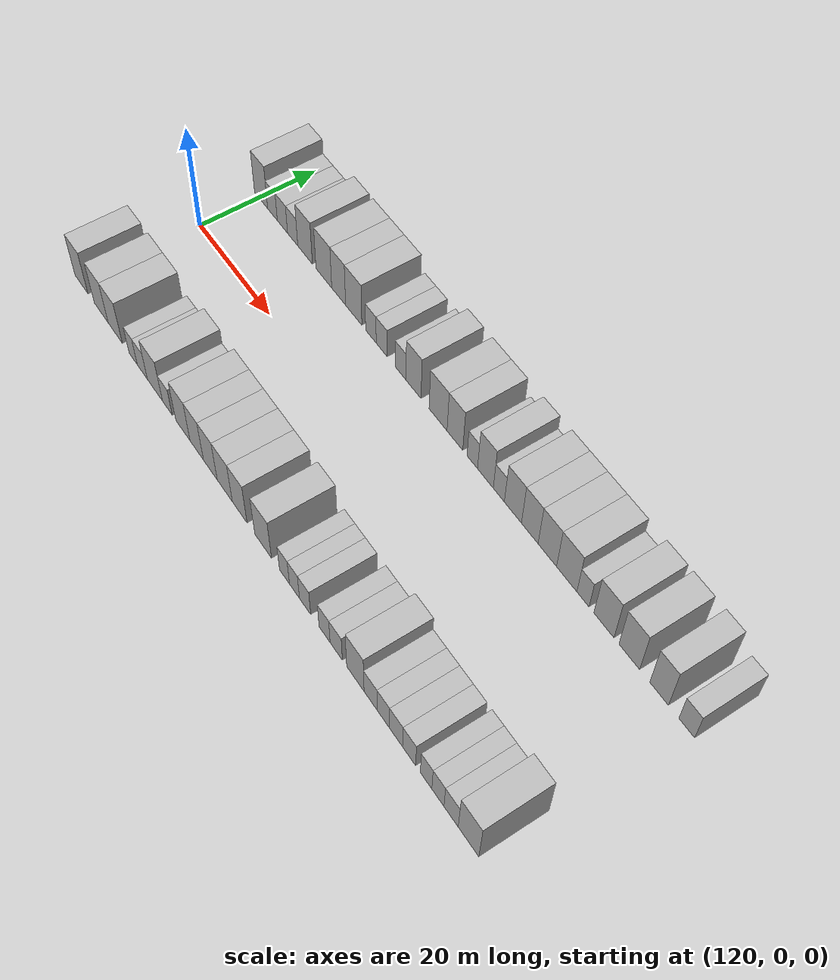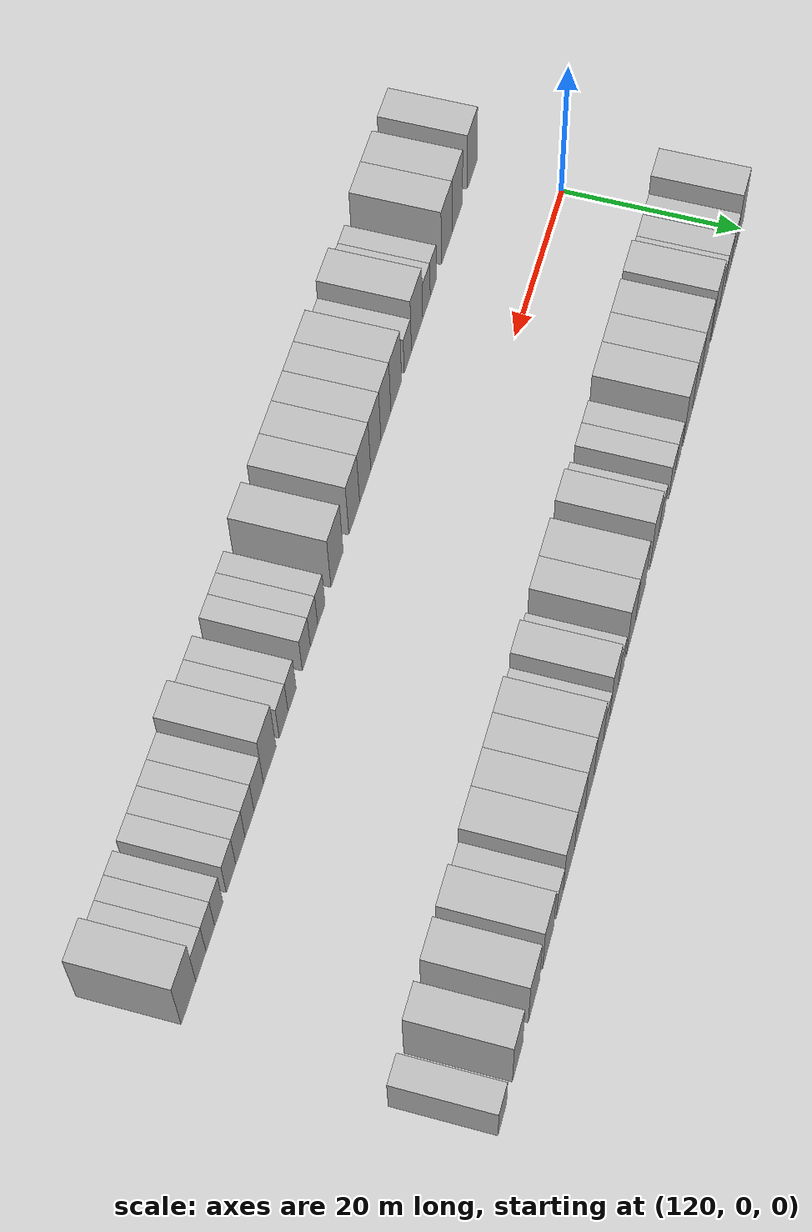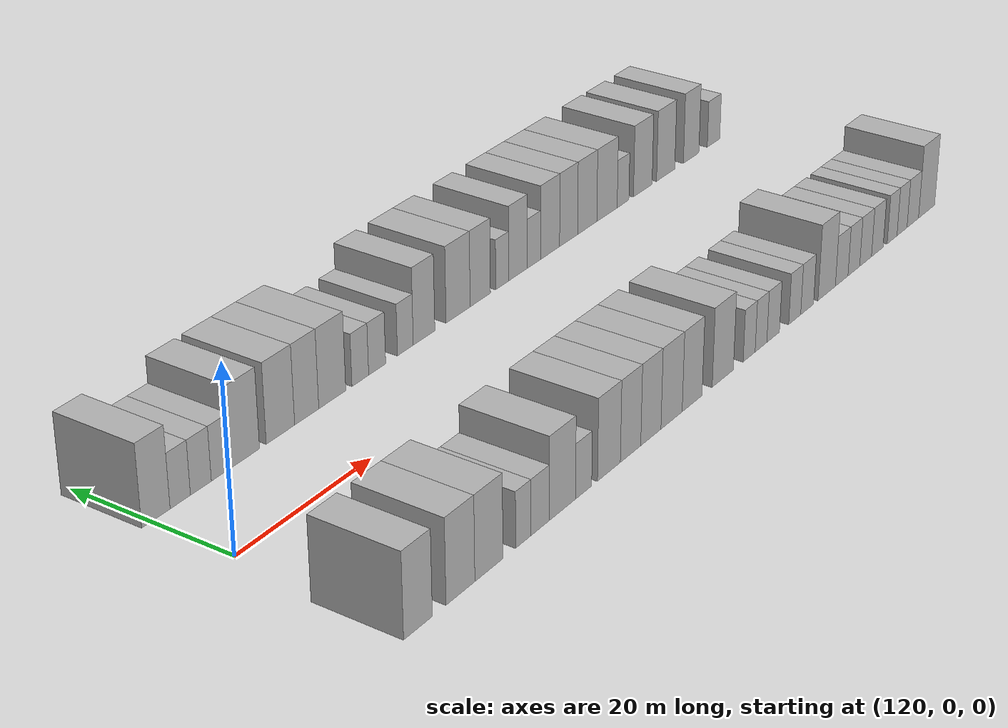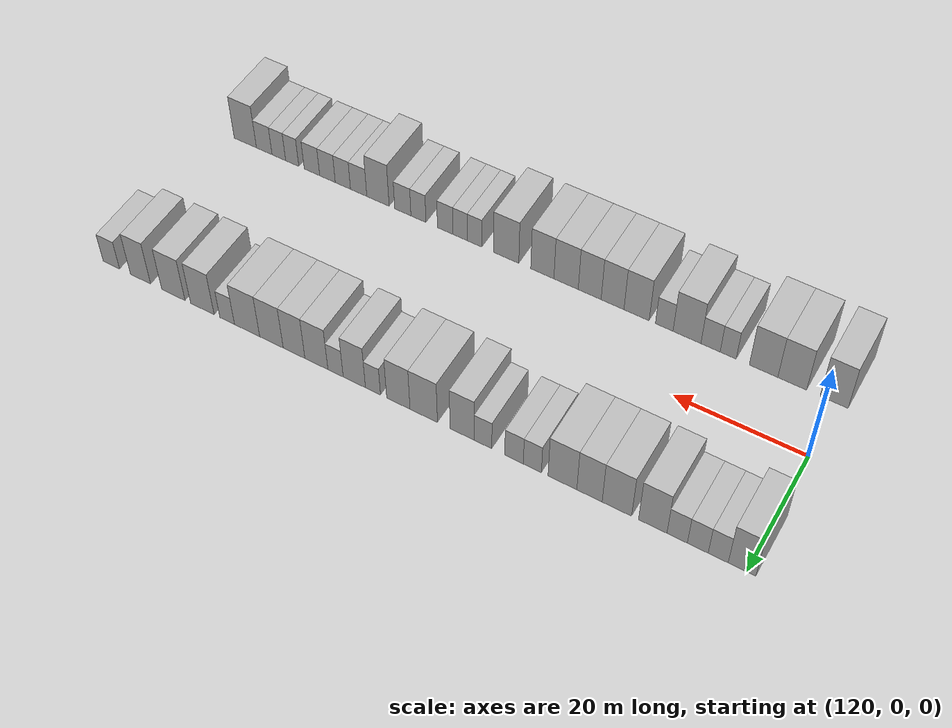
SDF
<sdf version="1.6">
 <world name="default">
  <model name="building_30">
   <static>1</static>
   <pose>120.6989 15.0000 0 0.000000 0.000000 1.570796</pose>
   <link name="link">
    <pose>0 0 4.50 0 0 0</pose>
    <collision name="collision"><geometry><box><size>10.0000 3.8567 9.0000</size></box></geometry></collision>
    <visual name="visual">
     <cast_shadows>0</cast_shadows>
     <geometry><box><size>10.0000 3.8567 9.0000</size></box></geometry>
     <material>
      <script>
       <uri>model://HANNAS_wall/materials/scripts</uri>
       <uri>model://HANNAS_wall/materials/textures</uri>
       <name>vrc/HANNAS_wall</name>
      </script>
     </material>
    </visual>
   </link>
  </model>
  <model name="building_31">
   <static>1</static>
   <pose>124.0344 15.0000 0 0.000000 0.000000 1.570796</pose>
   <link name="link">
    <pose>0 0 3.00 0 0 0</pose>
    <collision name="collision"><geometry><box><size>10.0000 2.8143 6.0000</size></box></geometry></collision>
    <visual name="visual">
     <cast_shadows>0</cast_shadows>
     <geometry><box><size>10.0000 2.8143 6.0000</size></box></geometry>
     <material>
      <script>
       <uri>model://HANNAS_wall/materials/scripts</uri>
       <uri>model://HANNAS_wall/materials/textures</uri>
       <name>vrc/HANNAS_wall</name>
      </script>
     </material>
    </visual>
   </link>
  </model>
  <model name="building_32">
   <static>1</static>
   <pose>126.9195 15.0000 0 0.000000 0.000000 1.570796</pose>
   <link name="link">
    <pose>0 0 3.00 0 0 0</pose>
    <collision name="collision"><geometry><box><size>10.0000 2.9560 6.0000</size></box></geometry></collision>
    <visual name="visual">
     <cast_shadows>0</cast_shadows>
     <geometry><box><size>10.0000 2.9560 6.0000</size></box></geometry>
     <material>
      <script>
       <uri>model://HANNAS_wall/materials/scripts</uri>
       <uri>model://HANNAS_wall/materials/textures</uri>
       <name>vrc/HANNAS_wall</name>
      </script>
     </material>
    </visual>
   </link>
  </model>
  <model name="building_33">
   <static>1</static>
   <pose>129.8543 15.0000 0 0.000000 0.000000 1.570796</pose>
   <link name="link">
    <pose>0 0 3.00 0 0 0</pose>
    <collision name="collision"><geometry><box><size>10.0000 2.9135 6.0000</size></box></geometry></collision>
    <visual name="visual">
     <cast_shadows>0</cast_shadows>
     <geometry><box><size>10.0000 2.9135 6.0000</size></box></geometry>
     <material>
      <script>
       <uri>model://HANNAS_wall/materials/scripts</uri>
       <uri>model://HANNAS_wall/materials/textures</uri>
       <name>vrc/HANNAS_wall</name>
      </script>
     </material>
    </visual>
   </link>
  </model>
  <model name="building_34">
   <static>1</static>
   <pose>133.3670 15.0000 0 0.000000 0.000000 1.570796</pose>
   <link name="link">
    <pose>0 0 4.50 0 0 0</pose>
    <collision name="collision"><geometry><box><size>10.0000 4.1120 9.0000</size></box></geometry></collision>
    <visual name="visual">
     <cast_shadows>0</cast_shadows>
     <geometry><box><size>10.0000 4.1120 9.0000</size></box></geometry>
     <material>
      <script>
       <uri>model://HANNAS_wall/materials/scripts</uri>
       <uri>model://HANNAS_wall/materials/textures</uri>
       <name>vrc/HANNAS_wall</name>
      </script>
     </material>
    </visual>
   </link>
  </model>
  <model name="building_35">
   <static>1</static>
   <pose>138.5876 15.0000 0 0.000000 0.000000 1.570796</pose>
   <link name="link">
    <pose>0 0 4.50 0 0 0</pose>
    <collision name="collision"><geometry><box><size>10.0000 4.3291 9.0000</size></box></geometry></collision>
    <visual name="visual">
     <cast_shadows>0</cast_shadows>
     <geometry><box><size>10.0000 4.3291 9.0000</size></box></geometry>
     <material>
      <script>
       <uri>model://HANNAS_wall/materials/scripts</uri>
       <uri>model://HANNAS_wall/materials/textures</uri>
       <name>vrc/HANNAS_wall</name>
      </script>
     </material>
    </visual>
   </link>
  </model>
  <model name="building_36">
   <static>1</static>
   <pose>142.6319 15.0000 0 0.000000 0.000000 1.570796</pose>
   <link name="link">
    <pose>0 0 4.50 0 0 0</pose>
    <collision name="collision"><geometry><box><size>10.0000 3.7596 9.0000</size></box></geometry></collision>
    <visual name="visual">
     <cast_shadows>0</cast_shadows>
     <geometry><box><size>10.0000 3.7596 9.0000</size></box></geometry>
     <material>
      <script>
       <uri>model://HANNAS_wall/materials/scripts</uri>
       <uri>model://HANNAS_wall/materials/textures</uri>
       <name>vrc/HANNAS_wall</name>
      </script>
     </material>
    </visual>
   </link>
  </model>
  <model name="building_37">
   <static>1</static>
   <pose>146.6720 15.0000 0 0.000000 0.000000 1.570796</pose>
   <link name="link">
    <pose>0 0 4.50 0 0 0</pose>
    <collision name="collision"><geometry><box><size>10.0000 4.3206 9.0000</size></box></geometry></collision>
    <visual name="visual">
     <cast_shadows>0</cast_shadows>
     <geometry><box><size>10.0000 4.3206 9.0000</size></box></geometry>
     <material>
      <script>
       <uri>model://HANNAS_wall/materials/scripts</uri>
       <uri>model://HANNAS_wall/materials/textures</uri>
       <name>vrc/HANNAS_wall</name>
      </script>
     </material>
    </visual>
   </link>
  </model>
  <model name="building_38">
   <static>1</static>
   <pose>151.2059 15.0000 0 0.000000 0.000000 1.570796</pose>
   <link name="link">
    <pose>0 0 3.00 0 0 0</pose>
    <collision name="collision"><geometry><box><size>10.0000 2.7472 6.0000</size></box></geometry></collision>
    <visual name="visual">
     <cast_shadows>0</cast_shadows>
     <geometry><box><size>10.0000 2.7472 6.0000</size></box></geometry>
     <material>
      <script>
       <uri>model://HANNAS_wall/materials/scripts</uri>
       <uri>model://HANNAS_wall/materials/textures</uri>
       <name>vrc/HANNAS_wall</name>
      </script>
     </material>
    </visual>
   </link>
  </model>
  <model name="building_39">
   <static>1</static>
   <pose>153.9997 15.0000 0 0.000000 0.000000 1.570796</pose>
   <link name="link">
    <pose>0 0 3.00 0 0 0</pose>
    <collision name="collision"><geometry><box><size>10.0000 2.8406 6.0000</size></box></geometry></collision>
    <visual name="visual">
     <cast_shadows>0</cast_shadows>
     <geometry><box><size>10.0000 2.8406 6.0000</size></box></geometry>
     <material>
      <script>
       <uri>model://HANNAS_wall/materials/scripts</uri>
       <uri>model://HANNAS_wall/materials/textures</uri>
       <name>vrc/HANNAS_wall</name>
      </script>
     </material>
    </visual>
   </link>
  </model>
  <model name="building_40">
   <static>1</static>
   <pose>158.7817 15.0000 0 0.000000 0.000000 1.570796</pose>
   <link name="link">
    <pose>0 0 3.00 0 0 0</pose>
    <collision name="collision"><geometry><box><size>10.0000 2.7233 6.0000</size></box></geometry></collision>
    <visual name="visual">
     <cast_shadows>0</cast_shadows>
     <geometry><box><size>10.0000 2.7233 6.0000</size></box></geometry>
     <material>
      <script>
       <uri>model://HANNAS_wall/materials/scripts</uri>
       <uri>model://HANNAS_wall/materials/textures</uri>
       <name>vrc/HANNAS_wall</name>
      </script>
     </material>
    </visual>
   </link>
  </model>
  <model name="building_41">
   <static>1</static>
   <pose>162.0331 15.0000 0 0.000000 0.000000 1.570796</pose>
   <link name="link">
    <pose>0 0 4.50 0 0 0</pose>
    <collision name="collision"><geometry><box><size>10.0000 3.7794 9.0000</size></box></geometry></collision>
    <visual name="visual">
     <cast_shadows>0</cast_shadows>
     <geometry><box><size>10.0000 3.7794 9.0000</size></box></geometry>
     <material>
      <script>
       <uri>model://HANNAS_wall/materials/scripts</uri>
       <uri>model://HANNAS_wall/materials/textures</uri>
       <name>vrc/HANNAS_wall</name>
      </script>
     </material>
    </visual>
   </link>
  </model>
  <model name="building_42">
   <static>1</static>
   <pose>168.1089 15.0000 0 0.000000 0.000000 1.570796</pose>
   <link name="link">
    <pose>0 0 4.50 0 0 0</pose>
    <collision name="collision"><geometry><box><size>10.0000 4.3722 9.0000</size></box></geometry></collision>
    <visual name="visual">
     <cast_shadows>0</cast_shadows>
     <geometry><box><size>10.0000 4.3722 9.0000</size></box></geometry>
     <material>
      <script>
       <uri>model://HANNAS_wall/materials/scripts</uri>
       <uri>model://HANNAS_wall/materials/textures</uri>
       <name>vrc/HANNAS_wall</name>
      </script>
     </material>
    </visual>
   </link>
  </model>
  <model name="building_43">
   <static>1</static>
   <pose>172.1720 15.0000 0 0.000000 0.000000 1.570796</pose>
   <link name="link">
    <pose>0 0 4.50 0 0 0</pose>
    <collision name="collision"><geometry><box><size>10.0000 3.7539 9.0000</size></box></geometry></collision>
    <visual name="visual">
     <cast_shadows>0</cast_shadows>
     <geometry><box><size>10.0000 3.7539 9.0000</size></box></geometry>
     <material>
      <script>
       <uri>model://HANNAS_wall/materials/scripts</uri>
       <uri>model://HANNAS_wall/materials/textures</uri>
       <name>vrc/HANNAS_wall</name>
      </script>
     </material>
    </visual>
   </link>
  </model>
  <model name="building_44">
   <static>1</static>
   <pose>176.2756 15.0000 0 0.000000 0.000000 1.570796</pose>
   <link name="link">
    <pose>0 0 3.00 0 0 0</pose>
    <collision name="collision"><geometry><box><size>10.0000 2.4533 6.0000</size></box></geometry></collision>
    <visual name="visual">
     <cast_shadows>0</cast_shadows>
     <geometry><box><size>10.0000 2.4533 6.0000</size></box></geometry>
     <material>
      <script>
       <uri>model://HANNAS_wall/materials/scripts</uri>
       <uri>model://HANNAS_wall/materials/textures</uri>
       <name>vrc/HANNAS_wall</name>
      </script>
     </material>
    </visual>
   </link>
  </model>
  <model name="building_45">
   <static>1</static>
   <pose>179.3268 15.0000 0 0.000000 0.000000 1.570796</pose>
   <link name="link">
    <pose>0 0 4.50 0 0 0</pose>
    <collision name="collision"><geometry><box><size>10.0000 3.6490 9.0000</size></box></geometry></collision>
    <visual name="visual">
     <cast_shadows>0</cast_shadows>
     <geometry><box><size>10.0000 3.6490 9.0000</size></box></geometry>
     <material>
      <script>
       <uri>model://HANNAS_wall/materials/scripts</uri>
       <uri>model://HANNAS_wall/materials/textures</uri>
       <name>vrc/HANNAS_wall</name>
      </script>
     </material>
    </visual>
   </link>
  </model>
  <model name="building_46">
   <static>1</static>
   <pose>182.4156 15.0000 0 0.000000 0.000000 1.570796</pose>
   <link name="link">
    <pose>0 0 3.00 0 0 0</pose>
    <collision name="collision"><geometry><box><size>10.0000 2.5285 6.0000</size></box></geometry></collision>
    <visual name="visual">
     <cast_shadows>0</cast_shadows>
     <geometry><box><size>10.0000 2.5285 6.0000</size></box></geometry>
     <material>
      <script>
       <uri>model://HANNAS_wall/materials/scripts</uri>
       <uri>model://HANNAS_wall/materials/textures</uri>
       <name>vrc/HANNAS_wall</name>
      </script>
     </material>
    </visual>
   </link>
  </model>
  <model name="building_47">
   <static>1</static>
   <pose>185.6002 15.0000 0 0.000000 0.000000 1.570796</pose>
   <link name="link">
    <pose>0 0 4.50 0 0 0</pose>
    <collision name="collision"><geometry><box><size>10.0000 3.8407 9.0000</size></box></geometry></collision>
    <visual name="visual">
     <cast_shadows>0</cast_shadows>
     <geometry><box><size>10.0000 3.8407 9.0000</size></box></geometry>
     <material>
      <script>
       <uri>model://HANNAS_wall/materials/scripts</uri>
       <uri>model://HANNAS_wall/materials/textures</uri>
       <name>vrc/HANNAS_wall</name>
      </script>
     </material>
    </visual>
   </link>
  </model>
  <model name="building_48">
   <static>1</static>
   <pose>189.3552 15.0000 0 0.000000 0.000000 1.570796</pose>
   <link name="link">
    <pose>0 0 4.50 0 0 0</pose>
    <collision name="collision"><geometry><box><size>10.0000 3.6694 9.0000</size></box></geometry></collision>
    <visual name="visual">
     <cast_shadows>0</cast_shadows>
     <geometry><box><size>10.0000 3.6694 9.0000</size></box></geometry>
     <material>
      <script>
       <uri>model://HANNAS_wall/materials/scripts</uri>
       <uri>model://HANNAS_wall/materials/textures</uri>
       <name>vrc/HANNAS_wall</name>
      </script>
     </material>
    </visual>
   </link>
  </model>
  <model name="building_49">
   <static>1</static>
   <pose>193.1939 15.0000 0 0.000000 0.000000 1.570796</pose>
   <link name="link">
    <pose>0 0 4.50 0 0 0</pose>
    <collision name="collision"><geometry><box><size>10.0000 4.0080 9.0000</size></box></geometry></collision>
    <visual name="visual">
     <cast_shadows>0</cast_shadows>
     <geometry><box><size>10.0000 4.0080 9.0000</size></box></geometry>
     <material>
      <script>
       <uri>model://HANNAS_wall/materials/scripts</uri>
       <uri>model://HANNAS_wall/materials/textures</uri>
       <name>vrc/HANNAS_wall</name>
      </script>
     </material>
    </visual>
   </link>
  </model>
  <model name="building_50">
   <static>1</static>
   <pose>197.3684 15.0000 0 0.000000 0.000000 1.570796</pose>
   <link name="link">
    <pose>0 0 4.50 0 0 0</pose>
    <collision name="collision"><geometry><box><size>10.0000 4.3410 9.0000</size></box></geometry></collision>
    <visual name="visual">
     <cast_shadows>0</cast_shadows>
     <geometry><box><size>10.0000 4.3410 9.0000</size></box></geometry>
     <material>
      <script>
       <uri>model://HANNAS_wall/materials/scripts</uri>
       <uri>model://HANNAS_wall/materials/textures</uri>
       <name>vrc/HANNAS_wall</name>
      </script>
     </material>
    </visual>
   </link>
  </model>
  <model name="building_51">
   <static>1</static>
   <pose>200.8115 15.0000 0 0.000000 0.000000 1.570796</pose>
   <link name="link">
    <pose>0 0 3.00 0 0 0</pose>
    <collision name="collision"><geometry><box><size>10.0000 2.5452 6.0000</size></box></geometry></collision>
    <visual name="visual">
     <cast_shadows>0</cast_shadows>
     <geometry><box><size>10.0000 2.5452 6.0000</size></box></geometry>
     <material>
      <script>
       <uri>model://HANNAS_wall/materials/scripts</uri>
       <uri>model://HANNAS_wall/materials/textures</uri>
       <name>vrc/HANNAS_wall</name>
      </script>
     </material>
    </visual>
   </link>
  </model>
  <model name="building_52">
   <static>1</static>
   <pose>205.1507 15.0000 0 0.000000 0.000000 1.570796</pose>
   <link name="link">
    <pose>0 0 4.50 0 0 0</pose>
    <collision name="collision"><geometry><box><size>10.0000 4.1331 9.0000</size></box></geometry></collision>
    <visual name="visual">
     <cast_shadows>0</cast_shadows>
     <geometry><box><size>10.0000 4.1331 9.0000</size></box></geometry>
     <material>
      <script>
       <uri>model://HANNAS_wall/materials/scripts</uri>
       <uri>model://HANNAS_wall/materials/textures</uri>
       <name>vrc/HANNAS_wall</name>
      </script>
     </material>
    </visual>
   </link>
  </model>
  <model name="building_53">
   <static>1</static>
   <pose>210.2899 15.0000 0 0.000000 0.000000 1.570796</pose>
   <link name="link">
    <pose>0 0 4.50 0 0 0</pose>
    <collision name="collision"><geometry><box><size>10.0000 4.1455 9.0000</size></box></geometry></collision>
    <visual name="visual">
     <cast_shadows>0</cast_shadows>
     <geometry><box><size>10.0000 4.1455 9.0000</size></box></geometry>
     <material>
      <script>
       <uri>model://HANNAS_wall/materials/scripts</uri>
       <uri>model://HANNAS_wall/materials/textures</uri>
       <name>vrc/HANNAS_wall</name>
      </script>
     </material>
    </visual>
   </link>
  </model>
  <model name="building_54">
   <static>1</static>
   <pose>216.1814 15.0000 0 0.000000 0.000000 1.570796</pose>
   <link name="link">
    <pose>0 0 4.50 0 0 0</pose>
    <collision name="collision"><geometry><box><size>10.0000 3.6375 9.0000</size></box></geometry></collision>
    <visual name="visual">
     <cast_shadows>0</cast_shadows>
     <geometry><box><size>10.0000 3.6375 9.0000</size></box></geometry>
     <material>
      <script>
       <uri>model://HANNAS_wall/materials/scripts</uri>
       <uri>model://HANNAS_wall/materials/textures</uri>
       <name>vrc/HANNAS_wall</name>
      </script>
     </material>
    </visual>
   </link>
  </model>
  <model name="building_55">
   <static>1</static>
   <pose>221.4985 15.0000 0 0.000000 0.000000 1.570796</pose>
   <link name="link">
    <pose>0 0 3.00 0 0 0</pose>
    <collision name="collision"><geometry><box><size>10.0000 2.9966 6.0000</size></box></geometry></collision>
    <visual name="visual">
     <cast_shadows>0</cast_shadows>
     <geometry><box><size>10.0000 2.9966 6.0000</size></box></geometry>
     <material>
      <script>
       <uri>model://HANNAS_wall/materials/scripts</uri>
       <uri>model://HANNAS_wall/materials/textures</uri>
       <name>vrc/HANNAS_wall</name>
      </script>
     </material>
    </visual>
   </link>
  </model>
  <model name="building_80">
   <static>1</static>
   <pose>120.4214 -15.0000 0 0.000000 0.000000 1.570796</pose>
   <link name="link">
    <pose>0 0 4.50 0 0 0</pose>
    <collision name="collision"><geometry><box><size>10.0000 4.1234 9.0000</size></box></geometry></collision>
    <visual name="visual">
     <cast_shadows>0</cast_shadows>
     <geometry><box><size>10.0000 4.1234 9.0000</size></box></geometry>
     <material>
      <script>
       <uri>model://HANNAS_wall/materials/scripts</uri>
       <uri>model://HANNAS_wall/materials/textures</uri>
       <name>vrc/HANNAS_wall</name>
      </script>
     </material>
    </visual>
   </link>
  </model>
  <model name="building_81">
   <static>1</static>
   <pose>126.6427 -15.0000 0 0.000000 0.000000 1.570796</pose>
   <link name="link">
    <pose>0 0 4.50 0 0 0</pose>
    <collision name="collision"><geometry><box><size>10.0000 4.3193 9.0000</size></box></geometry></collision>
    <visual name="visual">
     <cast_shadows>0</cast_shadows>
     <geometry><box><size>10.0000 4.3193 9.0000</size></box></geometry>
     <material>
      <script>
       <uri>model://HANNAS_wall/materials/scripts</uri>
       <uri>model://HANNAS_wall/materials/textures</uri>
       <name>vrc/HANNAS_wall</name>
      </script>
     </material>
    </visual>
   </link>
  </model>
  <model name="building_82">
   <static>1</static>
   <pose>130.9593 -15.0000 0 0.000000 0.000000 1.570796</pose>
   <link name="link">
    <pose>0 0 4.50 0 0 0</pose>
    <collision name="collision"><geometry><box><size>10.0000 4.3139 9.0000</size></box></geometry></collision>
    <visual name="visual">
     <cast_shadows>0</cast_shadows>
     <geometry><box><size>10.0000 4.3139 9.0000</size></box></geometry>
     <material>
      <script>
       <uri>model://HANNAS_wall/materials/scripts</uri>
       <uri>model://HANNAS_wall/materials/textures</uri>
       <name>vrc/HANNAS_wall</name>
      </script>
     </material>
    </visual>
   </link>
  </model>
  <model name="building_83">
   <static>1</static>
   <pose>136.3470 -15.0000 0 0.000000 0.000000 1.570796</pose>
   <link name="link">
    <pose>0 0 3.00 0 0 0</pose>
    <collision name="collision"><geometry><box><size>10.0000 2.4614 6.0000</size></box></geometry></collision>
    <visual name="visual">
     <cast_shadows>0</cast_shadows>
     <geometry><box><size>10.0000 2.4614 6.0000</size></box></geometry>
     <material>
      <script>
       <uri>model://HANNAS_wall/materials/scripts</uri>
       <uri>model://HANNAS_wall/materials/textures</uri>
       <name>vrc/HANNAS_wall</name>
      </script>
     </material>
    </visual>
   </link>
  </model>
  <model name="building_84">
   <static>1</static>
   <pose>139.0658 -15.0000 0 0.000000 0.000000 1.570796</pose>
   <link name="link">
    <pose>0 0 3.00 0 0 0</pose>
    <collision name="collision"><geometry><box><size>10.0000 2.9762 6.0000</size></box></geometry></collision>
    <visual name="visual">
     <cast_shadows>0</cast_shadows>
     <geometry><box><size>10.0000 2.9762 6.0000</size></box></geometry>
     <material>
      <script>
       <uri>model://HANNAS_wall/materials/scripts</uri>
       <uri>model://HANNAS_wall/materials/textures</uri>
       <name>vrc/HANNAS_wall</name>
      </script>
     </material>
    </visual>
   </link>
  </model>
  <model name="building_85">
   <static>1</static>
   <pose>142.7336 -15.0000 0 0.000000 0.000000 1.570796</pose>
   <link name="link">
    <pose>0 0 4.50 0 0 0</pose>
    <collision name="collision"><geometry><box><size>10.0000 4.3595 9.0000</size></box></geometry></collision>
    <visual name="visual">
     <cast_shadows>0</cast_shadows>
     <geometry><box><size>10.0000 4.3595 9.0000</size></box></geometry>
     <material>
      <script>
       <uri>model://HANNAS_wall/materials/scripts</uri>
       <uri>model://HANNAS_wall/materials/textures</uri>
       <name>vrc/HANNAS_wall</name>
      </script>
     </material>
    </visual>
   </link>
  </model>
  <model name="building_86">
   <static>1</static>
   <pose>146.2999 -15.0000 0 0.000000 0.000000 1.570796</pose>
   <link name="link">
    <pose>0 0 3.00 0 0 0</pose>
    <collision name="collision"><geometry><box><size>10.0000 2.7732 6.0000</size></box></geometry></collision>
    <visual name="visual">
     <cast_shadows>0</cast_shadows>
     <geometry><box><size>10.0000 2.7732 6.0000</size></box></geometry>
     <material>
      <script>
       <uri>model://HANNAS_wall/materials/scripts</uri>
       <uri>model://HANNAS_wall/materials/textures</uri>
       <name>vrc/HANNAS_wall</name>
      </script>
     </material>
    </visual>
   </link>
  </model>
  <model name="building_87">
   <static>1</static>
   <pose>150.6933 -15.0000 0 0.000000 0.000000 1.570796</pose>
   <link name="link">
    <pose>0 0 4.50 0 0 0</pose>
    <collision name="collision"><geometry><box><size>10.0000 4.0137 9.0000</size></box></geometry></collision>
    <visual name="visual">
     <cast_shadows>0</cast_shadows>
     <geometry><box><size>10.0000 4.0137 9.0000</size></box></geometry>
     <material>
      <script>
       <uri>model://HANNAS_wall/materials/scripts</uri>
       <uri>model://HANNAS_wall/materials/textures</uri>
       <name>vrc/HANNAS_wall</name>
      </script>
     </material>
    </visual>
   </link>
  </model>
  <model name="building_88">
   <static>1</static>
   <pose>154.5377 -15.0000 0 0.000000 0.000000 1.570796</pose>
   <link name="link">
    <pose>0 0 4.50 0 0 0</pose>
    <collision name="collision"><geometry><box><size>10.0000 3.6751 9.0000</size></box></geometry></collision>
    <visual name="visual">
     <cast_shadows>0</cast_shadows>
     <geometry><box><size>10.0000 3.6751 9.0000</size></box></geometry>
     <material>
      <script>
       <uri>model://HANNAS_wall/materials/scripts</uri>
       <uri>model://HANNAS_wall/materials/textures</uri>
       <name>vrc/HANNAS_wall</name>
      </script>
     </material>
    </visual>
   </link>
  </model>
  <model name="building_89">
   <static>1</static>
   <pose>158.2363 -15.0000 0 0.000000 0.000000 1.570796</pose>
   <link name="link">
    <pose>0 0 4.50 0 0 0</pose>
    <collision name="collision"><geometry><box><size>10.0000 3.7220 9.0000</size></box></geometry></collision>
    <visual name="visual">
     <cast_shadows>0</cast_shadows>
     <geometry><box><size>10.0000 3.7220 9.0000</size></box></geometry>
     <material>
      <script>
       <uri>model://HANNAS_wall/materials/scripts</uri>
       <uri>model://HANNAS_wall/materials/textures</uri>
       <name>vrc/HANNAS_wall</name>
      </script>
     </material>
    </visual>
   </link>
  </model>
  <model name="building_90">
   <static>1</static>
   <pose>162.0992 -15.0000 0 0.000000 0.000000 1.570796</pose>
   <link name="link">
    <pose>0 0 4.50 0 0 0</pose>
    <collision name="collision"><geometry><box><size>10.0000 4.0039 9.0000</size></box></geometry></collision>
    <visual name="visual">
     <cast_shadows>0</cast_shadows>
     <geometry><box><size>10.0000 4.0039 9.0000</size></box></geometry>
     <material>
      <script>
       <uri>model://HANNAS_wall/materials/scripts</uri>
       <uri>model://HANNAS_wall/materials/textures</uri>
       <name>vrc/HANNAS_wall</name>
      </script>
     </material>
    </visual>
   </link>
  </model>
  <model name="building_91">
   <static>1</static>
   <pose>166.0204 -15.0000 0 0.000000 0.000000 1.570796</pose>
   <link name="link">
    <pose>0 0 4.50 0 0 0</pose>
    <collision name="collision"><geometry><box><size>10.0000 3.8385 9.0000</size></box></geometry></collision>
    <visual name="visual">
     <cast_shadows>0</cast_shadows>
     <geometry><box><size>10.0000 3.8385 9.0000</size></box></geometry>
     <material>
      <script>
       <uri>model://HANNAS_wall/materials/scripts</uri>
       <uri>model://HANNAS_wall/materials/textures</uri>
       <name>vrc/HANNAS_wall</name>
      </script>
     </material>
    </visual>
   </link>
  </model>
  <model name="building_92">
   <static>1</static>
   <pose>172.0597 -15.0000 0 0.000000 0.000000 1.570796</pose>
   <link name="link">
    <pose>0 0 4.50 0 0 0</pose>
    <collision name="collision"><geometry><box><size>10.0000 4.2402 9.0000</size></box></geometry></collision>
    <visual name="visual">
     <cast_shadows>0</cast_shadows>
     <geometry><box><size>10.0000 4.2402 9.0000</size></box></geometry>
     <material>
      <script>
       <uri>model://HANNAS_wall/materials/scripts</uri>
       <uri>model://HANNAS_wall/materials/textures</uri>
       <name>vrc/HANNAS_wall</name>
      </script>
     </material>
    </visual>
   </link>
  </model>
  <model name="building_93">
   <static>1</static>
   <pose>177.4199 -15.0000 0 0.000000 0.000000 1.570796</pose>
   <link name="link">
    <pose>0 0 3.00 0 0 0</pose>
    <collision name="collision"><geometry><box><size>10.0000 2.4802 6.0000</size></box></geometry></collision>
    <visual name="visual">
     <cast_shadows>0</cast_shadows>
     <geometry><box><size>10.0000 2.4802 6.0000</size></box></geometry>
     <material>
      <script>
       <uri>model://HANNAS_wall/materials/scripts</uri>
       <uri>model://HANNAS_wall/materials/textures</uri>
       <name>vrc/HANNAS_wall</name>
      </script>
     </material>
    </visual>
   </link>
  </model>
  <model name="building_94">
   <static>1</static>
   <pose>179.8882 -15.0000 0 0.000000 0.000000 1.570796</pose>
   <link name="link">
    <pose>0 0 3.00 0 0 0</pose>
    <collision name="collision"><geometry><box><size>10.0000 2.4566 6.0000</size></box></geometry></collision>
    <visual name="visual">
     <cast_shadows>0</cast_shadows>
     <geometry><box><size>10.0000 2.4566 6.0000</size></box></geometry>
     <material>
      <script>
       <uri>model://HANNAS_wall/materials/scripts</uri>
       <uri>model://HANNAS_wall/materials/textures</uri>
       <name>vrc/HANNAS_wall</name>
      </script>
     </material>
    </visual>
   </link>
  </model>
  <model name="building_95">
   <static>1</static>
   <pose>182.4636 -15.0000 0 0.000000 0.000000 1.570796</pose>
   <link name="link">
    <pose>0 0 3.00 0 0 0</pose>
    <collision name="collision"><geometry><box><size>10.0000 2.6942 6.0000</size></box></geometry></collision>
    <visual name="visual">
     <cast_shadows>0</cast_shadows>
     <geometry><box><size>10.0000 2.6942 6.0000</size></box></geometry>
     <material>
      <script>
       <uri>model://HANNAS_wall/materials/scripts</uri>
       <uri>model://HANNAS_wall/materials/textures</uri>
       <name>vrc/HANNAS_wall</name>
      </script>
     </material>
    </visual>
   </link>
  </model>
  <model name="building_96">
   <static>1</static>
   <pose>187.1247 -15.0000 0 0.000000 0.000000 1.570796</pose>
   <link name="link">
    <pose>0 0 3.00 0 0 0</pose>
    <collision name="collision"><geometry><box><size>10.0000 2.6280 6.0000</size></box></geometry></collision>
    <visual name="visual">
     <cast_shadows>0</cast_shadows>
     <geometry><box><size>10.0000 2.6280 6.0000</size></box></geometry>
     <material>
      <script>
       <uri>model://HANNAS_wall/materials/scripts</uri>
       <uri>model://HANNAS_wall/materials/textures</uri>
       <name>vrc/HANNAS_wall</name>
      </script>
     </material>
    </visual>
   </link>
  </model>
  <model name="building_97">
   <static>1</static>
   <pose>189.8639 -15.0000 0 0.000000 0.000000 1.570796</pose>
   <link name="link">
    <pose>0 0 3.00 0 0 0</pose>
    <collision name="collision"><geometry><box><size>10.0000 2.8505 6.0000</size></box></geometry></collision>
    <visual name="visual">
     <cast_shadows>0</cast_shadows>
     <geometry><box><size>10.0000 2.8505 6.0000</size></box></geometry>
     <material>
      <script>
       <uri>model://HANNAS_wall/materials/scripts</uri>
       <uri>model://HANNAS_wall/materials/textures</uri>
       <name>vrc/HANNAS_wall</name>
      </script>
     </material>
    </visual>
   </link>
  </model>
  <model name="building_98">
   <static>1</static>
   <pose>194.2769 -15.0000 0 0.000000 0.000000 1.570796</pose>
   <link name="link">
    <pose>0 0 4.50 0 0 0</pose>
    <collision name="collision"><geometry><box><size>10.0000 3.9755 9.0000</size></box></geometry></collision>
    <visual name="visual">
     <cast_shadows>0</cast_shadows>
     <geometry><box><size>10.0000 3.9755 9.0000</size></box></geometry>
     <material>
      <script>
       <uri>model://HANNAS_wall/materials/scripts</uri>
       <uri>model://HANNAS_wall/materials/textures</uri>
       <name>vrc/HANNAS_wall</name>
      </script>
     </material>
    </visual>
   </link>
  </model>
  <model name="building_99">
   <static>1</static>
   <pose>197.7311 -15.0000 0 0.000000 0.000000 1.570796</pose>
   <link name="link">
    <pose>0 0 3.00 0 0 0</pose>
    <collision name="collision"><geometry><box><size>10.0000 2.9329 6.0000</size></box></geometry></collision>
    <visual name="visual">
     <cast_shadows>0</cast_shadows>
     <geometry><box><size>10.0000 2.9329 6.0000</size></box></geometry>
     <material>
      <script>
       <uri>model://HANNAS_wall/materials/scripts</uri>
       <uri>model://HANNAS_wall/materials/textures</uri>
       <name>vrc/HANNAS_wall</name>
      </script>
     </material>
    </visual>
   </link>
  </model>
  <model name="building_100">
   <static>1</static>
   <pose>200.5741 -15.0000 0 0.000000 0.000000 1.570796</pose>
   <link name="link">
    <pose>0 0 3.00 0 0 0</pose>
    <collision name="collision"><geometry><box><size>10.0000 2.7532 6.0000</size></box></geometry></collision>
    <visual name="visual">
     <cast_shadows>0</cast_shadows>
     <geometry><box><size>10.0000 2.7532 6.0000</size></box></geometry>
     <material>
      <script>
       <uri>model://HANNAS_wall/materials/scripts</uri>
       <uri>model://HANNAS_wall/materials/textures</uri>
       <name>vrc/HANNAS_wall</name>
      </script>
     </material>
    </visual>
   </link>
  </model>
  <model name="building_101">
   <static>1</static>
   <pose>203.3714 -15.0000 0 0.000000 0.000000 1.570796</pose>
   <link name="link">
    <pose>0 0 3.00 0 0 0</pose>
    <collision name="collision"><geometry><box><size>10.0000 2.8414 6.0000</size></box></geometry></collision>
    <visual name="visual">
     <cast_shadows>0</cast_shadows>
     <geometry><box><size>10.0000 2.8414 6.0000</size></box></geometry>
     <material>
      <script>
       <uri>model://HANNAS_wall/materials/scripts</uri>
       <uri>model://HANNAS_wall/materials/textures</uri>
       <name>vrc/HANNAS_wall</name>
      </script>
     </material>
    </visual>
   </link>
  </model>
  <model name="building_102">
   <static>1</static>
   <pose>206.2095 -15.0000 0 0.000000 0.000000 1.570796</pose>
   <link name="link">
    <pose>0 0 3.00 0 0 0</pose>
    <collision name="collision"><geometry><box><size>10.0000 2.8347 6.0000</size></box></geometry></collision>
    <visual name="visual">
     <cast_shadows>0</cast_shadows>
     <geometry><box><size>10.0000 2.8347 6.0000</size></box></geometry>
     <material>
      <script>
       <uri>model://HANNAS_wall/materials/scripts</uri>
       <uri>model://HANNAS_wall/materials/textures</uri>
       <name>vrc/HANNAS_wall</name>
      </script>
     </material>
    </visual>
   </link>
  </model>
  <model name="building_103">
   <static>1</static>
   <pose>209.8441 -15.0000 0 0.000000 0.000000 1.570796</pose>
   <link name="link">
    <pose>0 0 3.00 0 0 0</pose>
    <collision name="collision"><geometry><box><size>10.0000 2.4345 6.0000</size></box></geometry></collision>
    <visual name="visual">
     <cast_shadows>0</cast_shadows>
     <geometry><box><size>10.0000 2.4345 6.0000</size></box></geometry>
     <material>
      <script>
       <uri>model://HANNAS_wall/materials/scripts</uri>
       <uri>model://HANNAS_wall/materials/textures</uri>
       <name>vrc/HANNAS_wall</name>
      </script>
     </material>
    </visual>
   </link>
  </model>
  <model name="building_104">
   <static>1</static>
   <pose>212.3252 -15.0000 0 0.000000 0.000000 1.570796</pose>
   <link name="link">
    <pose>0 0 3.00 0 0 0</pose>
    <collision name="collision"><geometry><box><size>10.0000 2.5275 6.0000</size></box></geometry></collision>
    <visual name="visual">
     <cast_shadows>0</cast_shadows>
     <geometry><box><size>10.0000 2.5275 6.0000</size></box></geometry>
     <material>
      <script>
       <uri>model://HANNAS_wall/materials/scripts</uri>
       <uri>model://HANNAS_wall/materials/textures</uri>
       <name>vrc/HANNAS_wall</name>
      </script>
     </material>
    </visual>
   </link>
  </model>
  <model name="building_105">
   <static>1</static>
   <pose>215.0541 -15.0000 0 0.000000 0.000000 1.570796</pose>
   <link name="link">
    <pose>0 0 3.00 0 0 0</pose>
    <collision name="collision"><geometry><box><size>10.0000 2.9303 6.0000</size></box></geometry></collision>
    <visual name="visual">
     <cast_shadows>0</cast_shadows>
     <geometry><box><size>10.0000 2.9303 6.0000</size></box></geometry>
     <material>
      <script>
       <uri>model://HANNAS_wall/materials/scripts</uri>
       <uri>model://HANNAS_wall/materials/textures</uri>
       <name>vrc/HANNAS_wall</name>
      </script>
     </material>
    </visual>
   </link>
  </model>
  <model name="building_106">
   <static>1</static>
   <pose>218.6140 -15.0000 0 0.000000 0.000000 1.570796</pose>
   <link name="link">
    <pose>0 0 4.50 0 0 0</pose>
    <collision name="collision"><geometry><box><size>10.0000 4.1896 9.0000</size></box></geometry></collision>
    <visual name="visual">
     <cast_shadows>0</cast_shadows>
     <geometry><box><size>10.0000 4.1896 9.0000</size></box></geometry>
     <material>
      <script>
       <uri>model://HANNAS_wall/materials/scripts</uri>
       <uri>model://HANNAS_wall/materials/textures</uri>
       <name>vrc/HANNAS_wall</name>
      </script>
     </material>
    </visual>
   </link>
  </model>
 </world>
</sdf>
